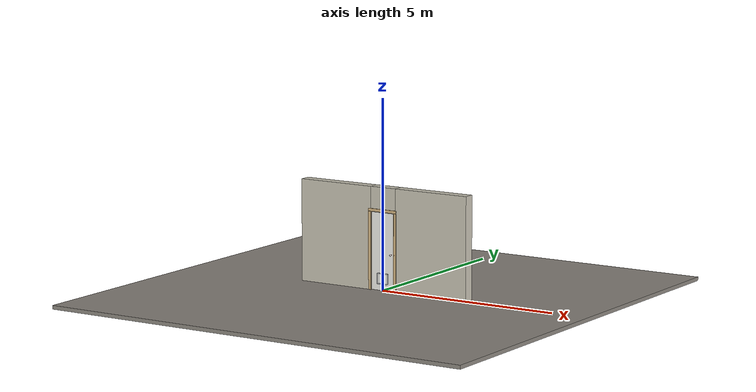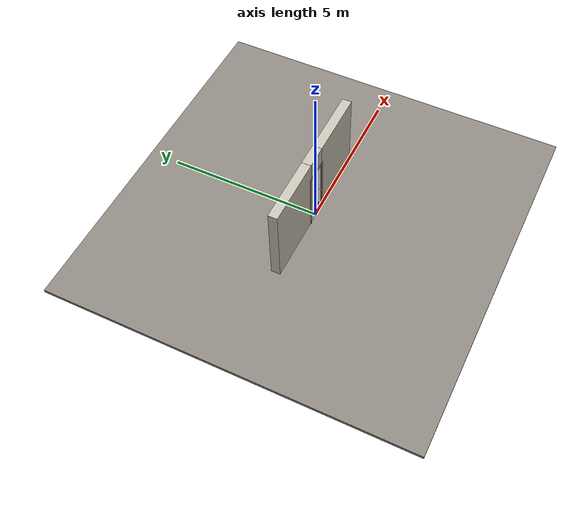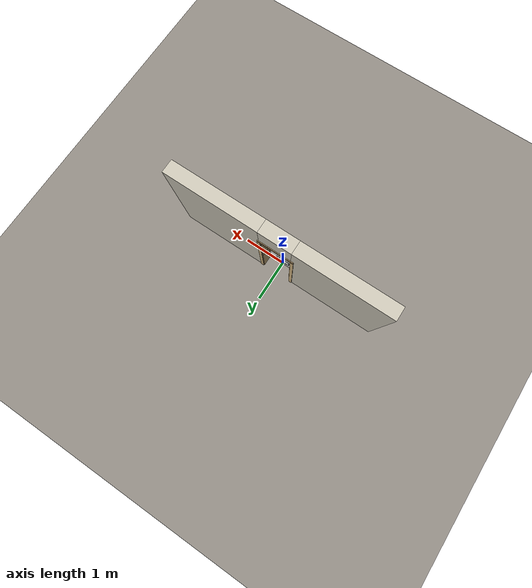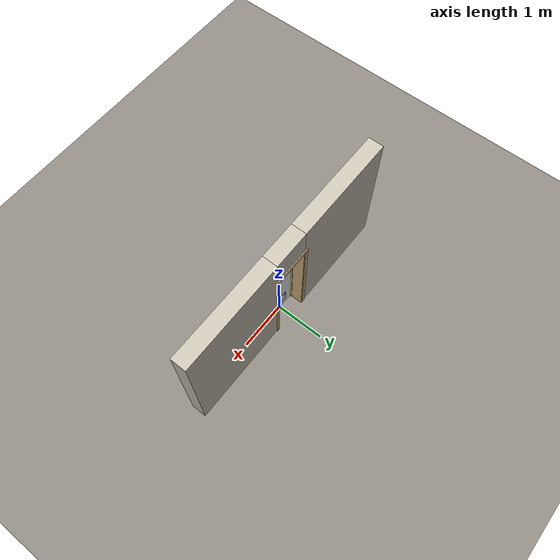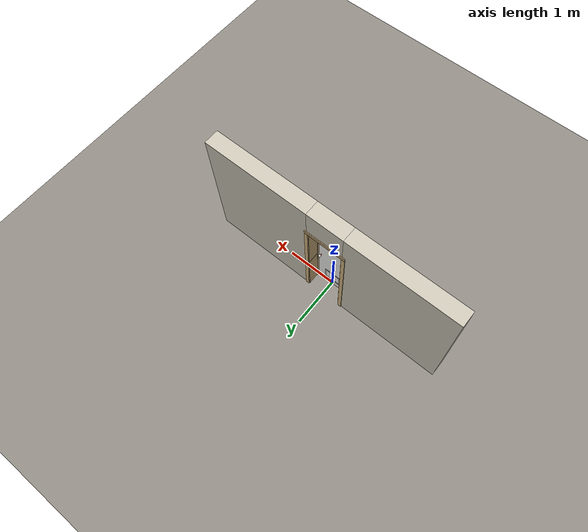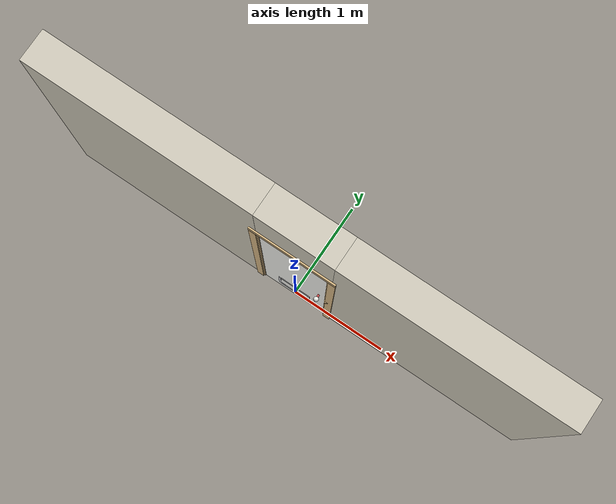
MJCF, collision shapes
<?xml version="1.0" ?>
<mujoco model="db0578_swing_single_full">
  <compiler angle="radian" meshdir="../../hardware" texturedir="../../textures" autolimits="true" inertiafromgeom="false"/>
  <option timestep="0.002" integrator="implicitfast" cone="elliptic" impratio="10" noslip_iterations="3">
    <flag multiccd="enable"/>
  </option>
  <size memory="16M"/>
  <default>
    <geom condim="4" solref="0.005 1" solimp="0.95 0.99 0.001"/>
    <joint solreflimit="0.005 1" solimplimit="0.95 0.99 0.001"/>
    <tendon solreflimit="0.005 1"/>
    <equality solref="0.002 1"/>
  </default>
  <visual>
    <headlight ambient="0.4 0.4 0.4" diffuse="0.7 0.7 0.7" specular="0.2 0.2 0.2"/>
    <quality shadowsize="4096"/>
    <map znear="0.01" zfar="60"/>
  </visual>
  <asset>
    <mesh name="hinge_96510cf394" file="hinge_96510cf394.obj"/>
    <mesh name="hinge_jamb_7fd4ca52b2" file="hinge_jamb_7fd4ca52b2.obj"/>
    <mesh name="knob_d6523d5571" file="knob_d6523d5571.obj"/>
    <material name="mat_floor" rgba="0.55 0.53 0.5 1" specular="0.2" shininess="0.15" reflectance="0"/>
    <material name="mat_wall" rgba="0.78 0.76 0.7 1" specular="0.2" shininess="0.1" reflectance="0"/>
    <material name="mat_leaf" rgba="0.93 0.93 0.91 1" specular="0.2" shininess="0.61" reflectance="0"/>
    <material name="mat_hinge" rgba="0.65 0.66 0.68 1" specular="0.74" shininess="0.5" reflectance="0.36"/>
    <material name="mat_op_pvc" rgba="0.92 0.92 0.9 1" specular="0.2" shininess="0.6" reflectance="0"/>
    <material name="mat_trim" rgba="0.85 0.66 0.3 1" specular="0.8" shininess="0.75" reflectance="0.4"/>
    <material name="mat_bolt" rgba="0.85 0.66 0.3 1" specular="0.8" shininess="0.75" reflectance="0.4"/>
    <material name="mat_frame" rgba="0.82 0.7 0.5 1" specular="0.2" shininess="0.45" reflectance="0"/>
    <material name="mat_seal" rgba="0.1 0.1 0.1 1" specular="0.2" shininess="0.1" reflectance="0"/>
    <material name="mat_vent" rgba="0.8 0.81 0.83 1" specular="0.8" shininess="0.6" reflectance="0.4"/>
    <texture name="skybox" type="skybox" builtin="gradient" rgb1="0.6 0.7 0.85" rgb2="0.9 0.92 0.95" width="256" height="256"/>
  </asset>
  <worldbody>
    <light name="sun" pos="1.5 -2.5 4" dir="-0.3 0.5 -0.8" directional="true" diffuse="0.8 0.8 0.8" specular="0.3 0.3 0.3" castshadow="true"/>
    <light name="fill" pos="-1.5 2.5 3" dir="0.3 -0.5 -0.7" directional="true" diffuse="0.35 0.35 0.4" castshadow="false"/>
    <camera name="robot_view" pos="0 -2.416687 1.734312" xyaxes="1 0 0 0 0.26963 0.962964" fovy="52"/>
    <camera name="far_view" pos="0 2.667687 1.734312" xyaxes="-1 0 0 0 -0.26963 0.962964" fovy="52"/>
    <camera name="iso" pos="1.932062 -2.009937 2.141063" xyaxes="0.741536 0.670913 0 -0.242917 0.268487 0.932151" fovy="46"/>
    <camera name="detail_handle" pos="0.4495 -0.864 1.245" xyaxes="0.97561 0.219512 0 -0.070934 0.315262 0.94635" fovy="38"/>
    <geom name="floor" type="box" size="6 6 0.05" pos="0 0 -0.05" material="mat_floor" group="0" contype="1" conaffinity="1" friction="0.8 0.005 0.0001" density="2400"/>
    <geom name="wall_left" type="box" size="1.07375 0.15 1.35" pos="-1.42625 0.1255 1.35" material="mat_wall" group="0" contype="1" conaffinity="1" friction="0.6 0.005 0.0001" density="800"/>
    <geom name="wall_right" type="box" size="1.05875 0.15 1.35" pos="1.44125 0.1255 1.35" material="mat_wall" group="0" contype="1" conaffinity="1" friction="0.6 0.005 0.0001" density="800"/>
    <geom name="wall_header" type="box" size="0.3675 0.15 0.303" pos="0.015 0.1255 2.397" material="mat_wall" group="0" contype="1" conaffinity="1" friction="0.6 0.005 0.0001" density="800"/>
    <geom name="hinge_0_jamb" type="mesh" mesh="hinge_jamb_7fd4ca52b2" pos="-0.3305 -0.0245 0.259" material="mat_hinge" group="1" contype="0" conaffinity="0" density="7850"/>
    <geom name="hinge_1_jamb" type="mesh" mesh="hinge_jamb_7fd4ca52b2" pos="-0.3305 -0.0245 1.861" material="mat_hinge" group="1" contype="0" conaffinity="0" density="7850"/>
    <geom name="jamb_hinge" type="box" size="0.0095 0.15 1.0225" pos="-0.343 0.1255 1.0225" material="mat_frame" group="0" contype="1" conaffinity="1" friction="0.6 0.005 0.0001" density="400"/>
    <geom name="strike_965_wall_n" type="box" size="0.0245 0.133825 0.0167" pos="0.358 0.141675 0.965" material="mat_frame" group="0" contype="1" conaffinity="1" friction="0.6 0.005 0.0001" density="400"/>
    <geom name="strike_965_wall_p" type="box" size="0.0245 0.008 0.0167" pos="0.358 -0.01585 0.965" material="mat_frame" group="0" contype="1" conaffinity="1" friction="0.6 0.005 0.0001" density="400"/>
    <geom name="strike_965_ramp" type="box" size="0.0245 0.01649 0.0167" pos="0.362636 -0.028673 0.965" quat="0.977148 0 0 0.212558" material="mat_frame" group="0" contype="1" conaffinity="1" friction="0.12 0.005 0.0001" density="400"/>
    <geom name="strike_965_back" type="box" size="0.01615 0.00785 0.0167" pos="0.36635 0 0.965" material="mat_frame" group="0" contype="1" conaffinity="1" friction="0.6 0.005 0.0001" density="400"/>
    <geom name="jamb_strike_0" type="box" size="0.0245 0.15 0.47415" pos="0.358 0.1255 0.47415" material="mat_frame" group="0" contype="1" conaffinity="1" friction="0.6 0.005 0.0001" density="400"/>
    <geom name="jamb_strike_1" type="box" size="0.0245 0.15 0.53165" pos="0.358 0.1255 1.51335" material="mat_frame" group="0" contype="1" conaffinity="1" friction="0.6 0.005 0.0001" density="400"/>
    <geom name="jamb_head" type="box" size="0.3675 0.15 0.0095" pos="0.015 0.1255 2.0545" material="mat_frame" group="0" contype="1" conaffinity="1" friction="0.6 0.005 0.0001" density="400"/>
    <geom name="head_stud" type="box" size="0.3675 0.15 0.015" pos="0.015 0.1255 2.079" material="mat_wall" group="0" contype="1" conaffinity="1" friction="0.6 0.005 0.0001" density="500"/>
    <geom name="stop_hinge" type="box" size="0.0055 0.016 1.0225" pos="-0.328 0.034 1.0225" material="mat_frame" group="0" contype="1" conaffinity="1" friction="0.6 0.005 0.0001" density="400"/>
    <geom name="stop_strike" type="box" size="0.0055 0.016 1.0225" pos="0.328 0.034 1.0225" material="mat_frame" group="0" contype="1" conaffinity="1" friction="0.6 0.005 0.0001" density="400"/>
    <geom name="stop_head" type="box" size="0.3335 0.016 0.0055" pos="0 0.034 2.0395" material="mat_frame" group="0" contype="1" conaffinity="1" friction="0.6 0.005 0.0001" density="400"/>
    <geom name="seal_hinge" type="box" size="0.004 0.0015 1.0225" pos="-0.3305 0.019 1.0225" material="mat_seal" group="1" contype="0" conaffinity="0" density="1100"/>
    <geom name="seal_strike" type="box" size="0.004 0.0015 1.0225" pos="0.3305 0.019 1.0225" material="mat_seal" group="1" contype="0" conaffinity="0" density="1100"/>
    <geom name="seal_head" type="box" size="0.3135 0.0015 0.008" pos="0 0.019 2.033" material="mat_seal" group="1" contype="0" conaffinity="0" density="1100"/>
    <geom name="casing_l_n" type="box" size="0.035 0.008 1.032" pos="-0.3825 -0.0325 1.0225" material="mat_frame" group="2" contype="0" conaffinity="0" density="400"/>
    <geom name="casing_r_n" type="box" size="0.035 0.008 1.032" pos="0.3825 -0.0325 1.0225" material="mat_frame" group="2" contype="0" conaffinity="0" density="400"/>
    <geom name="casing_h_n" type="box" size="0.4175 0.008 0.035" pos="0 -0.0325 2.094" material="mat_frame" group="2" contype="0" conaffinity="0" density="400"/>
    <geom name="casing_l_p" type="box" size="0.035 0.008 1.032" pos="-0.3825 0.2835 1.0225" material="mat_frame" group="2" contype="0" conaffinity="0" density="400"/>
    <geom name="casing_r_p" type="box" size="0.035 0.008 1.032" pos="0.3825 0.2835 1.0225" material="mat_frame" group="2" contype="0" conaffinity="0" density="400"/>
    <geom name="casing_h_p" type="box" size="0.4175 0.008 0.035" pos="0 0.2835 2.094" material="mat_frame" group="2" contype="0" conaffinity="0" density="400"/>
    <site name="approach_point" pos="0 -1.5 0" quat="1 0 0 0" size="0.05" rgba="0.2 0.9 0.2 0.5" group="4"/>
    <site name="goal_point" pos="0 1.5 0" quat="1 0 0 0" size="0.05" rgba="0.2 0.9 0.2 0.5" group="4"/>
    <site name="door_plane_center" pos="0 0 1.0225" quat="1 0 0 0" size="0.02" rgba="0.2 0.9 0.2 0.5" group="4"/>
    <body name="leaf" pos="-0.3335 0 0">
      <inertial pos="0.325164 -0.000365 0.958927" mass="9.658612" quat="0.501432 0.499836 0.500209 -0.498518" diaginertia="0.348127139 3.505757165 3.851561105"/>
      <joint name="leaf_hinge" type="hinge" axis="0 0 -1" pos="0.003 -0.0245 0" limited="true" range="0 1.919862" solreflimit="0.02 1" damping="0.119633" frictionloss="0.513266" armature="0.02"/>
      <geom name="leaf_slab" type="box" size="0.33 0.0175 1.016" pos="0.333 0 1.025" material="mat_leaf" group="0" contype="1" conaffinity="1" friction="0.35 0.005 0.0001" density="1"/>
      <geom name="hinge_0" type="mesh" mesh="hinge_96510cf394" pos="0.003 -0.0245 0.259" material="mat_hinge" group="1" contype="0" conaffinity="0" density="7850"/>
      <geom name="hinge_1" type="mesh" mesh="hinge_96510cf394" pos="0.003 -0.0245 1.861" material="mat_hinge" group="1" contype="0" conaffinity="0" density="7850"/>
      <geom name="leaf_latch_bolt_faceplate" type="box" size="0.0006 0.01235 0.0267" pos="0.6624 0 0.965" material="mat_bolt" group="1" contype="0" conaffinity="0" density="8500"/>
      <geom name="louver_vent_stile_n_l" type="box" size="0.012 0.002 0.137" pos="0.171 -0.0195 0.314" material="mat_vent" group="2" contype="0" conaffinity="0" density="2700"/>
      <geom name="louver_vent_stile_n_r" type="box" size="0.012 0.002 0.137" pos="0.495 -0.0195 0.314" material="mat_vent" group="2" contype="0" conaffinity="0" density="2700"/>
      <geom name="louver_vent_rail_n_b" type="box" size="0.15 0.002 0.012" pos="0.333 -0.0195 0.177" material="mat_vent" group="2" contype="0" conaffinity="0" density="2700"/>
      <geom name="louver_vent_rail_n_t" type="box" size="0.15 0.002 0.012" pos="0.333 -0.0195 0.451" material="mat_vent" group="2" contype="0" conaffinity="0" density="2700"/>
      <geom name="louver_vent_stile_p_l" type="box" size="0.012 0.002 0.137" pos="0.171 0.0195 0.314" material="mat_vent" group="2" contype="0" conaffinity="0" density="2700"/>
      <geom name="louver_vent_stile_p_r" type="box" size="0.012 0.002 0.137" pos="0.495 0.0195 0.314" material="mat_vent" group="2" contype="0" conaffinity="0" density="2700"/>
      <geom name="louver_vent_rail_p_b" type="box" size="0.15 0.002 0.012" pos="0.333 0.0195 0.177" material="mat_vent" group="2" contype="0" conaffinity="0" density="2700"/>
      <geom name="louver_vent_rail_p_t" type="box" size="0.15 0.002 0.012" pos="0.333 0.0195 0.451" material="mat_vent" group="2" contype="0" conaffinity="0" density="2700"/>
      <geom name="louver_vent_slat_0" type="box" size="0.15 0.0015 0.015" pos="0.333 0 0.209833" quat="0.965926 -0.258819 0 0" material="mat_vent" group="2" contype="0" conaffinity="0" density="2700"/>
      <geom name="louver_vent_slat_1" type="box" size="0.15 0.0015 0.015" pos="0.333 0 0.2515" quat="0.965926 -0.258819 0 0" material="mat_vent" group="2" contype="0" conaffinity="0" density="2700"/>
      <geom name="louver_vent_slat_2" type="box" size="0.15 0.0015 0.015" pos="0.333 0 0.293167" quat="0.965926 -0.258819 0 0" material="mat_vent" group="2" contype="0" conaffinity="0" density="2700"/>
      <geom name="louver_vent_slat_3" type="box" size="0.15 0.0015 0.015" pos="0.333 0 0.334833" quat="0.965926 -0.258819 0 0" material="mat_vent" group="2" contype="0" conaffinity="0" density="2700"/>
      <geom name="louver_vent_slat_4" type="box" size="0.15 0.0015 0.015" pos="0.333 0 0.3765" quat="0.965926 -0.258819 0 0" material="mat_vent" group="2" contype="0" conaffinity="0" density="2700"/>
      <geom name="louver_vent_slat_5" type="box" size="0.15 0.0015 0.015" pos="0.333 0 0.418167" quat="0.965926 -0.258819 0 0" material="mat_vent" group="2" contype="0" conaffinity="0" density="2700"/>
      <site name="leaf_edge_mid" pos="0.663 0 1.016" quat="1 0 0 0" size="0.02" rgba="0.2 0.9 0.2 0.5" group="4"/>
      <body name="leaf_handle" pos="0.603 0 0.965">
        <inertial pos="0 0 0" mass="3.575149" quat="0.5 0.5 0.5 0.5" diaginertia="0.003579626 0.012911038 0.012911038"/>
        <joint name="leaf_handle_hinge" type="hinge" axis="0 -1 0" limited="true" range="0 0.87" damping="0.164801" frictionloss="0.039" stiffness="0.5" springref="-0.5" armature="0.01"/>
        <geom name="leaf_handle_spindle" type="cylinder" size="0.006 0.0255" pos="0 0 0" quat="0.707107 -0.707107 0 0" material="mat_op_pvc" group="1" contype="0" conaffinity="0" density="7850"/>
        <geom name="leaf_handle_knob_n" type="mesh" mesh="knob_d6523d5571" pos="0 -0.0175 0" quat="0.707107 0.707107 0 0" material="mat_op_pvc" group="1" contype="0" conaffinity="0" density="3000"/>
        <geom name="leaf_handle_knob_col_n" type="sphere" size="0.0243" pos="0 -0.064 0" material="mat_op_pvc" group="0" contype="1" conaffinity="1" friction="0.15 0.01 0.0001" density="3000"/>
        <geom name="leaf_handle_knob_neck_n" type="cylinder" size="0.011 0.012" pos="0 -0.0295 0" quat="0.707107 -0.707107 0 0" material="mat_op_pvc" group="3" contype="1" conaffinity="1" rgba="0.8 0.3 0.3 0.25" friction="0.6 0.005 0.0001" density="3000"/>
        <geom name="leaf_handle_knob_p" type="mesh" mesh="knob_d6523d5571" pos="0 0.0175 0" quat="-0.707107 0.707107 0 0" material="mat_op_pvc" group="1" contype="0" conaffinity="0" density="3000"/>
        <geom name="leaf_handle_knob_col_p" type="sphere" size="0.0243" pos="0 0.064 0" material="mat_op_pvc" group="0" contype="1" conaffinity="1" friction="0.15 0.01 0.0001" density="3000"/>
        <geom name="leaf_handle_knob_neck_p" type="cylinder" size="0.011 0.012" pos="0 0.0295 0" quat="0.707107 -0.707107 0 0" material="mat_op_pvc" group="3" contype="1" conaffinity="1" rgba="0.8 0.3 0.3 0.25" friction="0.6 0.005 0.0001" density="3000"/>
        <site name="leaf_handle_grip_n" pos="0 -0.064 0" quat="1 0 0 0" size="0.012" rgba="0.2 0.9 0.2 0.5" group="4"/>
        <site name="leaf_handle_grip_p" pos="0 0.064 0" quat="1 0 0 0" size="0.012" rgba="0.2 0.9 0.2 0.5" group="4"/>
      </body>
      <body name="leaf_latch_bolt" pos="0.663 0 0.965">
        <inertial pos="-0.00865 0 0" mass="0.041419" quat="0.92388 -0.382683 0 0" diaginertia="0.000000798 0.000005598 0.000005598"/>
        <joint name="leaf_latch_bolt_slide" type="slide" axis="-1 0 0" limited="true" range="0 0.0127" damping="2" frictionloss="0.3" stiffness="300" springref="-0.008333" armature="0.1"/>
        <geom name="leaf_latch_bolt_capsule" type="capsule" size="0.00635 0.015" pos="-0.00865 0 0" quat="0.707107 0 0.707107 0" material="mat_bolt" group="0" contype="1" conaffinity="1" friction="0.2 0.005 0.0001" density="8500"/>
      </body>
    </body>
  </worldbody>
  <tendon>
    <fixed name="leaf_latch_bolt_coupling" limited="true" range="0 10">
      <joint joint="leaf_latch_bolt_slide" coef="1"/>
      <joint joint="leaf_handle_hinge" coef="-0.015679"/>
    </fixed>
  </tendon>
  <sensor>
    <jointpos name="leaf_hinge_pos" joint="leaf_hinge"/>
    <jointvel name="leaf_hinge_vel" joint="leaf_hinge"/>
    <jointpos name="leaf_handle_hinge_pos" joint="leaf_handle_hinge"/>
    <jointvel name="leaf_handle_hinge_vel" joint="leaf_handle_hinge"/>
    <jointpos name="leaf_latch_bolt_slide_pos" joint="leaf_latch_bolt_slide"/>
    <jointvel name="leaf_latch_bolt_slide_vel" joint="leaf_latch_bolt_slide"/>
  </sensor>
</mujoco>
